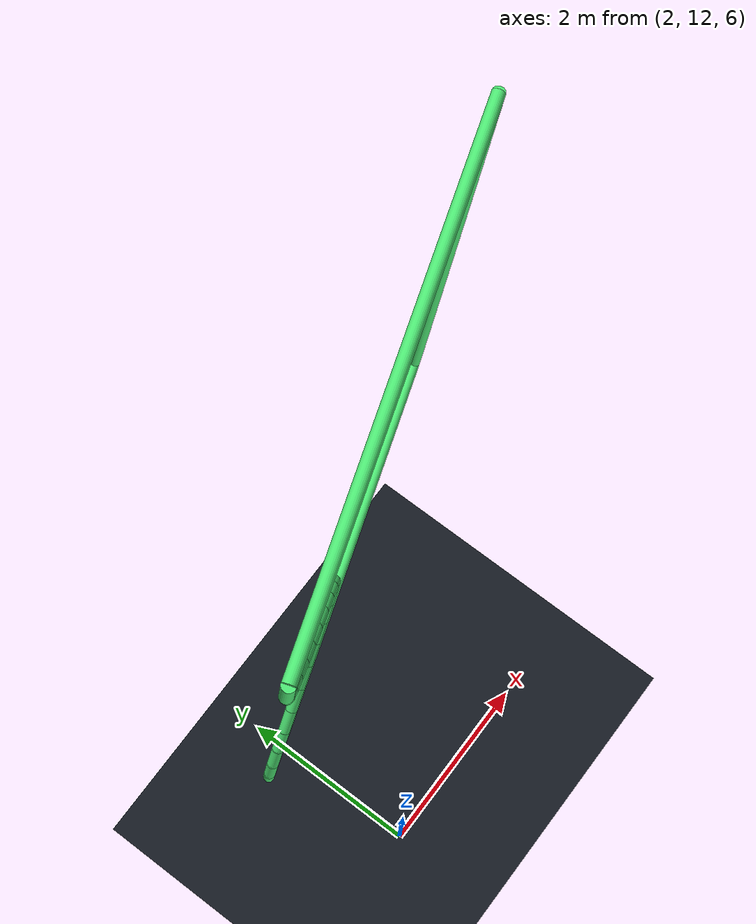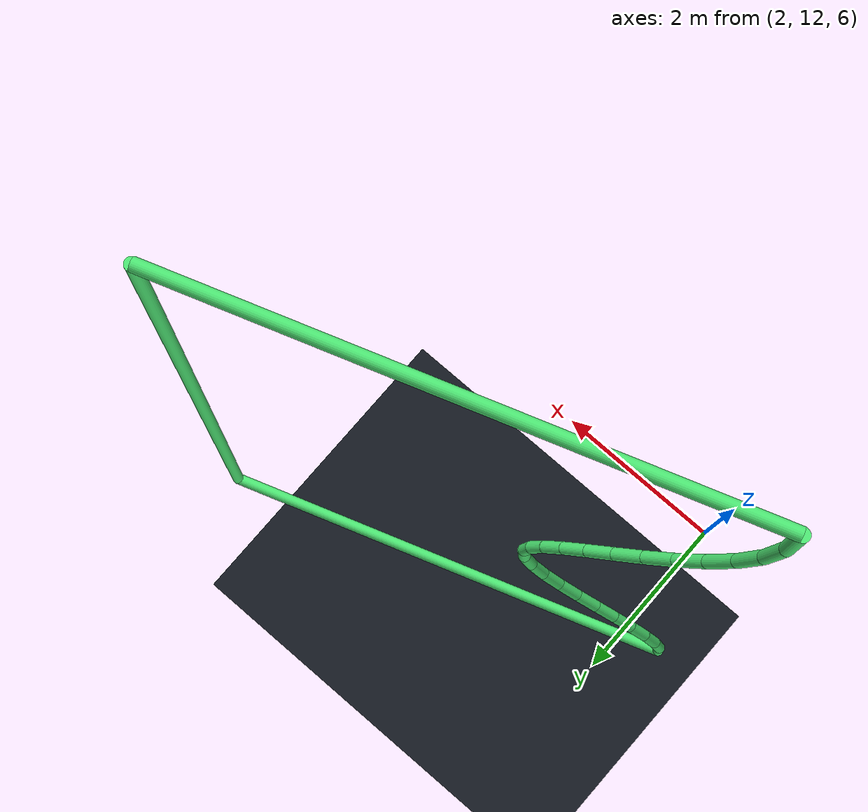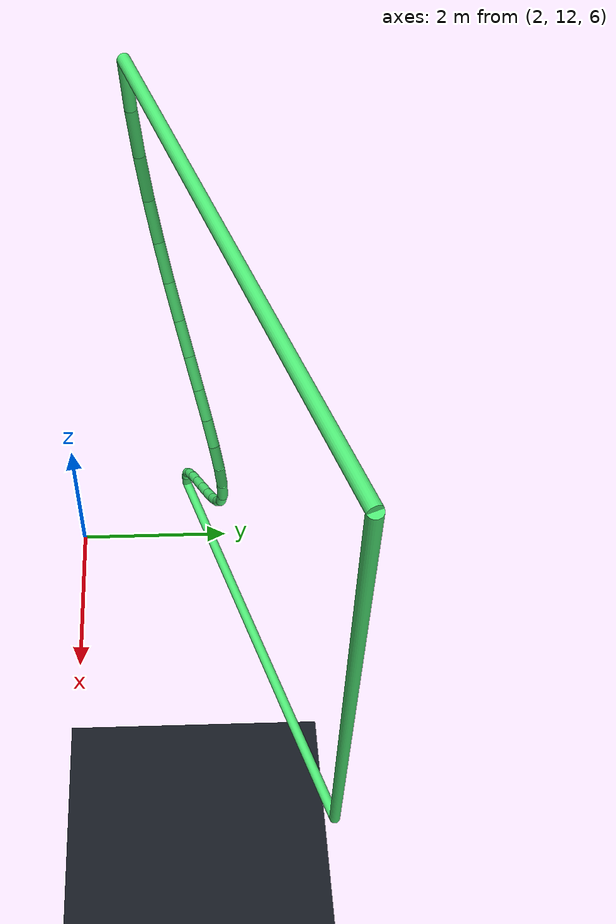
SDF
<sdf version="1.9">
 <world name="wide_scrambled_fast_closed_loop">
  <model name="ground">
   <static>true</static>
   <pose>0 0 -6 0 0 0</pose>
   <link name="link">
    <collision name="c"><geometry><plane><normal>0 0 1</normal><size>80 80</size></plane></geometry></collision>
    <visual name="v">
     <geometry><plane><normal>0 0 1</normal><size>80 80</size></plane></geometry>
     <material><diffuse>0.08 0.10 0.13 1</diffuse></material>
    </visual>
   </link>
  </model>
  <model name="gate_2_bezier_notch">
   <static>true</static>
   <pose>4.000000 14.000000 10.000000 0.000000 1.491903 1.892547</pose>
   <link name="edge_0">
    <pose>0.000000 -2.550000 0 0 1.570796 0.000000</pose>
    <collision name="collision">
     <geometry><cylinder><radius>0.06</radius><length>6.600000</length></cylinder></geometry>
    </collision>
    <visual name="visual">
     <geometry><cylinder><radius>0.06</radius><length>6.600000</length></cylinder></geometry>
     <material><diffuse>0.30 0.90 0.45 1</diffuse><emissive>0.30 0.90 0.45 1</emissive></material>
    </visual>
   </link>
   <link name="edge_1">
    <pose>3.300000 -0.050000 0 0 1.570796 1.570796</pose>
    <collision name="collision">
     <geometry><cylinder><radius>0.06</radius><length>5.000000</length></cylinder></geometry>
    </collision>
    <visual name="visual">
     <geometry><cylinder><radius>0.06</radius><length>5.000000</length></cylinder></geometry>
     <material><diffuse>0.30 0.90 0.45 1</diffuse><emissive>0.30 0.90 0.45 1</emissive></material>
    </visual>
   </link>
   <link name="edge_2">
    <pose>3.198090 2.442810 0 0 1.570796 -3.071153</pose>
    <collision name="collision">
     <geometry><cylinder><radius>0.06</radius><length>0.204326</length></cylinder></geometry>
    </collision>
    <visual name="visual">
     <geometry><cylinder><radius>0.06</radius><length>0.204326</length></cylinder></geometry>
     <material><diffuse>0.30 0.90 0.45 1</diffuse><emissive>0.30 0.90 0.45 1</emissive></material>
    </visual>
   </link>
   <link name="edge_3">
    <pose>3.001563 2.393620 0 0 1.570796 -2.723837</pose>
    <collision name="collision">
     <geometry><cylinder><radius>0.06</radius><length>0.207041</length></cylinder></geometry>
    </collision>
    <visual name="visual">
     <geometry><cylinder><radius>0.06</radius><length>0.207041</length></cylinder></geometry>
     <material><diffuse>0.30 0.90 0.45 1</diffuse><emissive>0.30 0.90 0.45 1</emissive></material>
    </visual>
   </link>
   <link name="edge_4">
    <pose>2.817535 2.281670 0 0 1.570796 -2.477699</pose>
    <collision name="collision">
     <geometry><cylinder><radius>0.06</radius><length>0.227044</length></cylinder></geometry>
    </collision>
    <visual name="visual">
     <geometry><cylinder><radius>0.06</radius><length>0.227044</length></cylinder></geometry>
     <material><diffuse>0.30 0.90 0.45 1</diffuse><emissive>0.30 0.90 0.45 1</emissive></material>
    </visual>
   </link>
   <link name="edge_5">
    <pose>2.641840 2.120674 0 0 1.570796 -2.329359</pose>
    <collision name="collision">
     <geometry><cylinder><radius>0.06</radius><length>0.250872</length></cylinder></geometry>
    </collision>
    <visual name="visual">
     <geometry><cylinder><radius>0.06</radius><length>0.250872</length></cylinder></geometry>
     <material><diffuse>0.30 0.90 0.45 1</diffuse><emissive>0.30 0.90 0.45 1</emissive></material>
    </visual>
   </link>
   <link name="edge_6">
    <pose>2.470313 1.924349 0 0 1.570796 -2.251408</pose>
    <collision name="collision">
     <geometry><cylinder><radius>0.06</radius><length>0.270927</length></cylinder></geometry>
    </collision>
    <visual name="visual">
     <geometry><cylinder><radius>0.06</radius><length>0.270927</length></cylinder></geometry>
     <material><diffuse>0.30 0.90 0.45 1</diffuse><emissive>0.30 0.90 0.45 1</emissive></material>
    </visual>
   </link>
   <link name="edge_7">
    <pose>2.298785 1.706409 0 0 1.570796 -2.224391</pose>
    <collision name="collision">
     <geometry><cylinder><radius>0.06</radius><length>0.283811</length></cylinder></geometry>
    </collision>
    <visual name="visual">
     <geometry><cylinder><radius>0.06</radius><length>0.283811</length></cylinder></geometry>
     <material><diffuse>0.30 0.90 0.45 1</diffuse><emissive>0.30 0.90 0.45 1</emissive></material>
    </visual>
   </link>
   <link name="edge_8">
    <pose>2.123090 1.480570 0 0 1.570796 -2.239397</pose>
    <collision name="collision">
     <geometry><cylinder><radius>0.06</radius><length>0.288470</length></cylinder></geometry>
    </collision>
    <visual name="visual">
     <geometry><cylinder><radius>0.06</radius><length>0.288470</length></cylinder></geometry>
     <material><diffuse>0.30 0.90 0.45 1</diffuse><emissive>0.30 0.90 0.45 1</emissive></material>
    </visual>
   </link>
   <link name="edge_9">
    <pose>1.939062 1.260547 0 0 1.570796 -2.295587</pose>
    <collision name="collision">
     <geometry><cylinder><radius>0.06</radius><length>0.285433</length></cylinder></geometry>
    </collision>
    <visual name="visual">
     <geometry><cylinder><radius>0.06</radius><length>0.285433</length></cylinder></geometry>
     <material><diffuse>0.30 0.90 0.45 1</diffuse><emissive>0.30 0.90 0.45 1</emissive></material>
    </visual>
   </link>
   <link name="edge_10">
    <pose>1.742535 1.060055 0 0 1.570796 -2.398412</pose>
    <collision name="collision">
     <geometry><cylinder><radius>0.06</radius><length>0.276808</length></cylinder></geometry>
    </collision>
    <visual name="visual">
     <geometry><cylinder><radius>0.06</radius><length>0.276808</length></cylinder></geometry>
     <material><diffuse>0.30 0.90 0.45 1</diffuse><emissive>0.30 0.90 0.45 1</emissive></material>
    </visual>
   </link>
   <link name="edge_11">
    <pose>1.529340 0.892810 0 0 1.570796 -2.557289</pose>
    <collision name="collision">
     <geometry><cylinder><radius>0.06</radius><length>0.266839</length></cylinder></geometry>
    </collision>
    <visual name="visual">
     <geometry><cylinder><radius>0.06</radius><length>0.266839</length></cylinder></geometry>
     <material><diffuse>0.30 0.90 0.45 1</diffuse><emissive>0.30 0.90 0.45 1</emissive></material>
    </visual>
   </link>
   <link name="edge_12">
    <pose>1.295313 0.772526 0 0 1.570796 -2.778128</pose>
    <collision name="collision">
     <geometry><cylinder><radius>0.06</radius><length>0.262644</length></cylinder></geometry>
    </collision>
    <visual name="visual">
     <geometry><cylinder><radius>0.06</radius><length>0.262644</length></cylinder></geometry>
     <material><diffuse>0.30 0.90 0.45 1</diffuse><emissive>0.30 0.90 0.45 1</emissive></material>
    </visual>
   </link>
   <link name="edge_13">
    <pose>1.036285 0.712920 0 0 1.570796 -3.047077</pose>
    <collision name="collision">
     <geometry><cylinder><radius>0.06</radius><length>0.273791</length></cylinder></geometry>
    </collision>
    <visual name="visual">
     <geometry><cylinder><radius>0.06</radius><length>0.273791</length></cylinder></geometry>
     <material><diffuse>0.30 0.90 0.45 1</diffuse><emissive>0.30 0.90 0.45 1</emissive></material>
    </visual>
   </link>
   <link name="edge_14">
    <pose>0.773698 0.727529 0 0 1.570796 2.926988</pose>
    <collision name="collision">
     <geometry><cylinder><radius>0.06</radius><length>0.258535</length></cylinder></geometry>
    </collision>
    <visual name="visual">
     <geometry><cylinder><radius>0.06</radius><length>0.258535</length></cylinder></geometry>
     <material><diffuse>0.30 0.90 0.45 1</diffuse><emissive>0.30 0.90 0.45 1</emissive></material>
    </visual>
   </link>
   <link name="edge_15">
    <pose>0.517448 0.813177 0 0 1.570796 2.721028</pose>
    <collision name="collision">
     <geometry><cylinder><radius>0.06</radius><length>0.284705</length></cylinder></geometry>
    </collision>
    <visual name="visual">
     <geometry><cylinder><radius>0.06</radius><length>0.284705</length></cylinder></geometry>
     <material><diffuse>0.30 0.90 0.45 1</diffuse><emissive>0.30 0.90 0.45 1</emissive></material>
    </visual>
   </link>
   <link name="edge_16">
    <pose>0.252344 0.953304 0 0 1.570796 2.596214</pose>
    <collision name="collision">
     <geometry><cylinder><radius>0.06</radius><length>0.316181</length></cylinder></geometry>
    </collision>
    <visual name="visual">
     <geometry><cylinder><radius>0.06</radius><length>0.316181</length></cylinder></geometry>
     <material><diffuse>0.30 0.90 0.45 1</diffuse><emissive>0.30 0.90 0.45 1</emissive></material>
    </visual>
   </link>
   <link name="edge_17">
    <pose>-0.024740 1.134508 0 0 1.570796 2.531592</pose>
    <collision name="collision">
     <geometry><cylinder><radius>0.06</radius><length>0.346312</length></cylinder></geometry>
    </collision>
    <visual name="visual">
     <geometry><cylinder><radius>0.06</radius><length>0.346312</length></cylinder></geometry>
     <material><diffuse>0.30 0.90 0.45 1</diffuse><emissive>0.30 0.90 0.45 1</emissive></material>
    </visual>
   </link>
   <link name="edge_18">
    <pose>-0.316927 1.343385 0 0 1.570796 2.511051</pose>
    <collision name="collision">
     <geometry><cylinder><radius>0.06</radius><length>0.372066</length></cylinder></geometry>
    </collision>
    <visual name="visual">
     <geometry><cylinder><radius>0.06</radius><length>0.372066</length></cylinder></geometry>
     <material><diffuse>0.30 0.90 0.45 1</diffuse><emissive>0.30 0.90 0.45 1</emissive></material>
    </visual>
   </link>
   <link name="edge_19">
    <pose>-0.627344 1.566534 0 0 1.570796 2.525202</pose>
    <collision name="collision">
     <geometry><cylinder><radius>0.06</radius><length>0.392554</length></cylinder></geometry>
    </collision>
    <visual name="visual">
     <geometry><cylinder><radius>0.06</radius><length>0.392554</length></cylinder></geometry>
     <material><diffuse>0.30 0.90 0.45 1</diffuse><emissive>0.30 0.90 0.45 1</emissive></material>
    </visual>
   </link>
   <link name="edge_20">
    <pose>-0.959115 1.790550 0 0 1.570796 2.569323</pose>
    <collision name="collision">
     <geometry><cylinder><radius>0.06</radius><length>0.408278</length></cylinder></geometry>
    </collision>
    <visual name="visual">
     <geometry><cylinder><radius>0.06</radius><length>0.408278</length></cylinder></geometry>
     <material><diffuse>0.30 0.90 0.45 1</diffuse><emissive>0.30 0.90 0.45 1</emissive></material>
    </visual>
   </link>
   <link name="edge_21">
    <pose>-1.315365 2.002031 0 0 1.570796 2.641322</pose>
    <collision name="collision">
     <geometry><cylinder><radius>0.06</radius><length>0.420844</length></cylinder></geometry>
    </collision>
    <visual name="visual">
     <geometry><cylinder><radius>0.06</radius><length>0.420844</length></cylinder></geometry>
     <material><diffuse>0.30 0.90 0.45 1</diffuse><emissive>0.30 0.90 0.45 1</emissive></material>
    </visual>
   </link>
   <link name="edge_22">
    <pose>-1.699219 2.187575 0 0 1.570796 2.739959</pose>
    <collision name="collision">
     <geometry><cylinder><radius>0.06</radius><length>0.432885</length></cylinder></geometry>
    </collision>
    <visual name="visual">
     <geometry><cylinder><radius>0.06</radius><length>0.432885</length></cylinder></geometry>
     <material><diffuse>0.30 0.90 0.45 1</diffuse><emissive>0.30 0.90 0.45 1</emissive></material>
    </visual>
   </link>
   <link name="edge_23">
    <pose>-2.113802 2.333779 0 0 1.570796 2.863041</pose>
    <collision name="collision">
     <geometry><cylinder><radius>0.06</radius><length>0.447997</length></cylinder></geometry>
    </collision>
    <visual name="visual">
     <geometry><cylinder><radius>0.06</radius><length>0.447997</length></cylinder></geometry>
     <material><diffuse>0.30 0.90 0.45 1</diffuse><emissive>0.30 0.90 0.45 1</emissive></material>
    </visual>
   </link>
   <link name="edge_24">
    <pose>-2.562240 2.427240 0 0 1.570796 3.005700</pose>
    <collision name="collision">
     <geometry><cylinder><radius>0.06</radius><length>0.470483</length></cylinder></geometry>
    </collision>
    <visual name="visual">
     <geometry><cylinder><radius>0.06</radius><length>0.470483</length></cylinder></geometry>
     <material><diffuse>0.30 0.90 0.45 1</diffuse><emissive>0.30 0.90 0.45 1</emissive></material>
    </visual>
   </link>
   <link name="edge_25">
    <pose>-3.047656 2.454554 0 0 1.570796 -3.123546</pose>
    <collision name="collision">
     <geometry><cylinder><radius>0.06</radius><length>0.504770</length></cylinder></geometry>
    </collision>
    <visual name="visual">
     <geometry><cylinder><radius>0.06</radius><length>0.504770</length></cylinder></geometry>
     <material><diffuse>0.30 0.90 0.45 1</diffuse><emissive>0.30 0.90 0.45 1</emissive></material>
    </visual>
   </link>
   <link name="edge_26">
    <pose>-3.300000 -0.050000 0 0 1.570796 -1.570796</pose>
    <collision name="collision">
     <geometry><cylinder><radius>0.06</radius><length>5.000000</length></cylinder></geometry>
    </collision>
    <visual name="visual">
     <geometry><cylinder><radius>0.06</radius><length>5.000000</length></cylinder></geometry>
     <material><diffuse>0.30 0.90 0.45 1</diffuse><emissive>0.30 0.90 0.45 1</emissive></material>
    </visual>
   </link>
  </model>
 </world>
</sdf>
